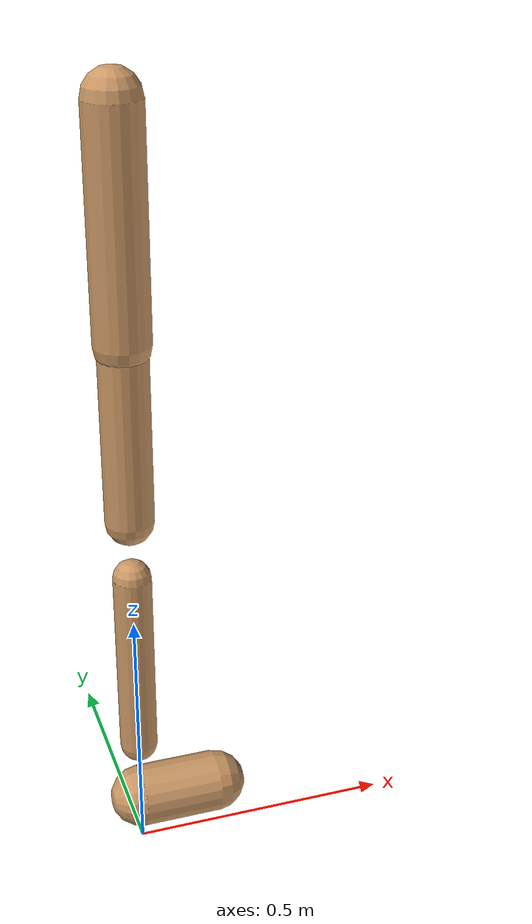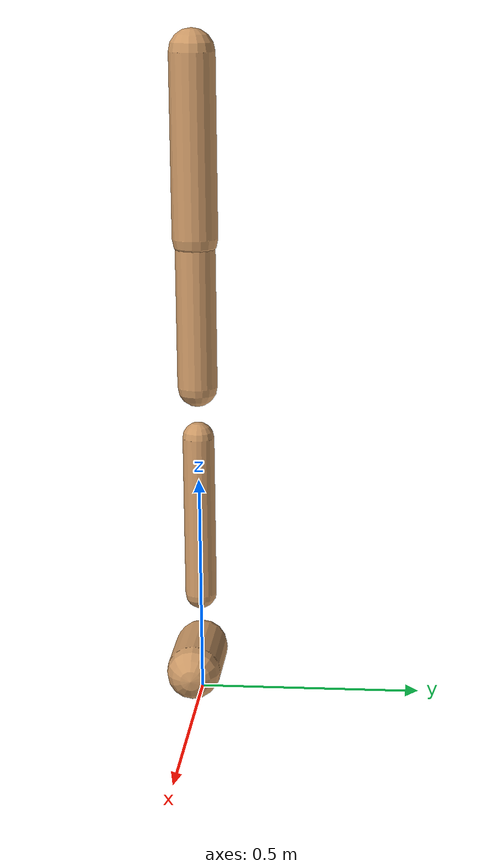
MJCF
<mujoco model="walker2d">
  <compiler angle="degree" coordinate="global" inertiafromgeom="true" />
  <default>
    <joint armature="0.01" damping=".1" limited="true" />
    <geom conaffinity="0" condim="3" contype="1" density="1000" friction="0.8 .1 .1" rgba="0.8 0.6 .4 1" />
  </default>
  <option integrator="RK4" timestep="0.002" />
  <worldbody>

    <body name="torso" pos="0 0 -0.2486744531441786">
      <joint armature="0" axis="1 0 0" damping="0" limited="false" name="ignorex" pos="0 0 0" stiffness="0" type="slide" />
      <joint armature="0" axis="0 0 1" damping="0" limited="false" name="ignorez" pos="0 0 0" ref="1.25" stiffness="0" type="slide" />
      <joint armature="0" axis="0 1 0" damping="0" limited="false" name="ignorey" pos="0 0 0" stiffness="0" type="hinge" />
      <geom fromto="0 0 1.45 0 0 1.05" name="torso_geom" size="0.05066838388121045" type="capsule" />
      <body name="thigh">
        <joint axis="0 -1 0" name="thigh_joint" pos="0 0 1.05" range="-150 0" type="hinge" />
        <geom fromto="0.0 0.0 1.05 0.0 0.0 0.7177931620156636" name="thigh_geom" size="0.044513252631032646" type="capsule" />
        <body name="leg" pos="0.0 0.0 0.11779316201566359">
          <joint axis="0 -1 0" name="leg_joint" pos="0 0 0.6" range="-150 0" type="hinge" />
          <geom fromto="0.0 0.0 0.6 0.0 0.0 0.23088129112851505" name="leg_geom" size="0.03561060210482611" type="capsule" />
          <body name="foot" pos="0.0 0.0 0.13088129112851504">
            <joint axis="0 -1 0" name="foot_joint" pos="0 0 0.1" range="-45 45" type="hinge" />
            <geom fromto="0.0 0.0 0.1 0.150996629470069 0.0 0.1" name="foot_geom" size="0.059502185440198405" type="capsule" />
          </body>
        </body>
      </body>

      <body name="thigh_left">
        <joint axis="0 -1 0" name="thigh_left_joint" pos="0 0 1.05" range="-150 0" type="hinge" />
        <geom fromto="0.0 0.0 1.05 0.0 0.0 0.7177931620156636" name="thigh_left_geom" rgba=".7 .3 .6 1" size="0.044513252631032646" type="capsule" />
        <body name="leg_left" pos="0.0 0.0 0.11779316201566359">
          <joint axis="0 -1 0" name="leg_left_joint" pos="0 0 0.6" range="-150 0" type="hinge" />
          <geom fromto="0.0 0.0 0.6 0.0 0.0 0.23088129112851505" name="leg_left_geom" rgba=".7 .3 .6 1" size="0.03561060210482611" type="capsule" />
          <body name="foot_left" pos="0.0 0.0 0.13088129112851504">
            <joint axis="0 -1 0" name="foot_left_joint" pos="0 0 0.1" range="-45 45" type="hinge" />
            <geom fromto="0.0 0.0 0.1 0.150996629470069 0.0 0.1" name="foot_left_geom" rgba=".7 .3 .6 1" size="0.059502185440198405" type="capsule" />
          </body>
        </body>
      </body>
    </body>
  </worldbody>
  <actuator>

    <motor ctrllimited="true" ctrlrange="-1.0 1.0" gear="100" joint="thigh_joint" />
    <motor ctrllimited="true" ctrlrange="-1.0 1.0" gear="100" joint="leg_joint" />
    <motor ctrllimited="true" ctrlrange="-1.0 1.0" gear="100" joint="foot_joint" />
    <motor ctrllimited="true" ctrlrange="-1.0 1.0" gear="100" joint="thigh_left_joint" />
    <motor ctrllimited="true" ctrlrange="-1.0 1.0" gear="100" joint="leg_left_joint" />
    <motor ctrllimited="true" ctrlrange="-1.0 1.0" gear="100" joint="foot_left_joint" />

  </actuator>
</mujoco>
